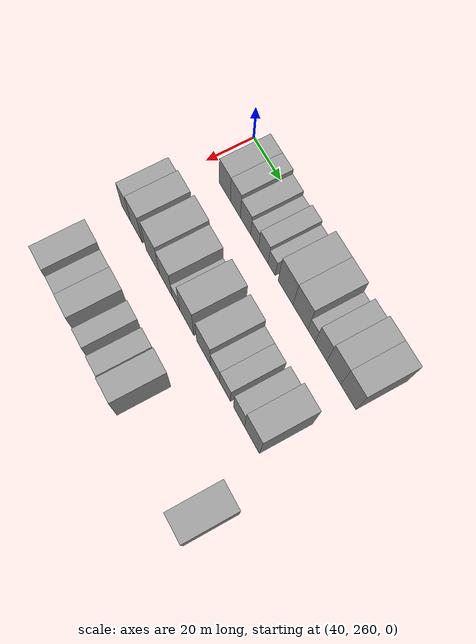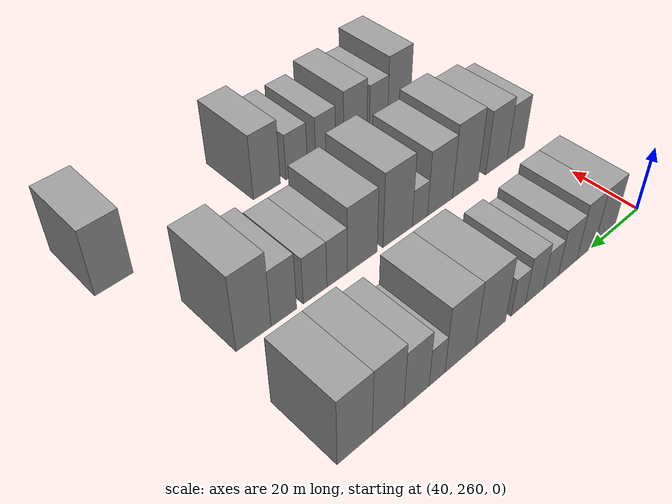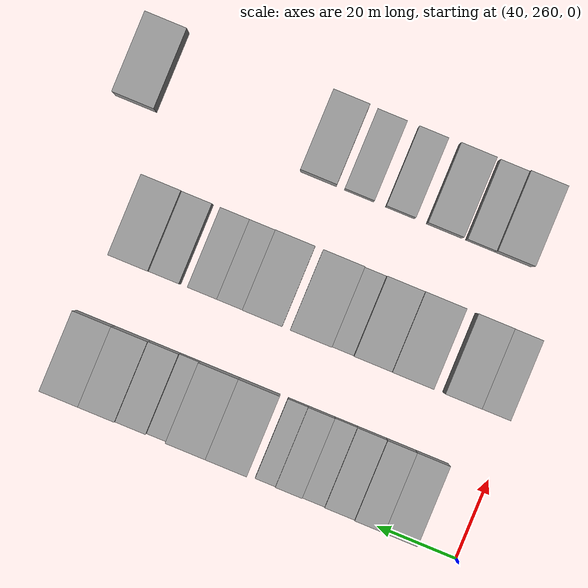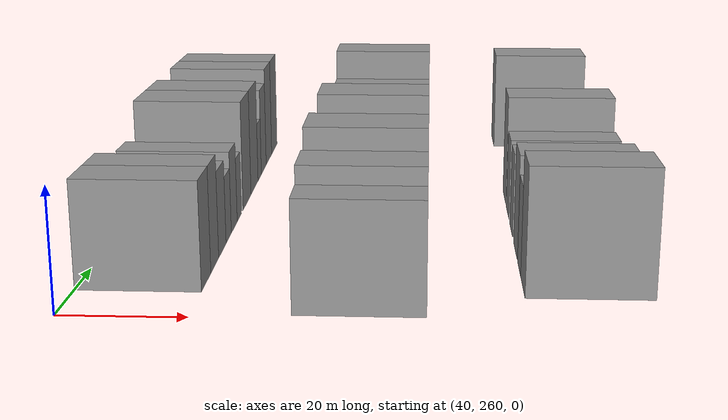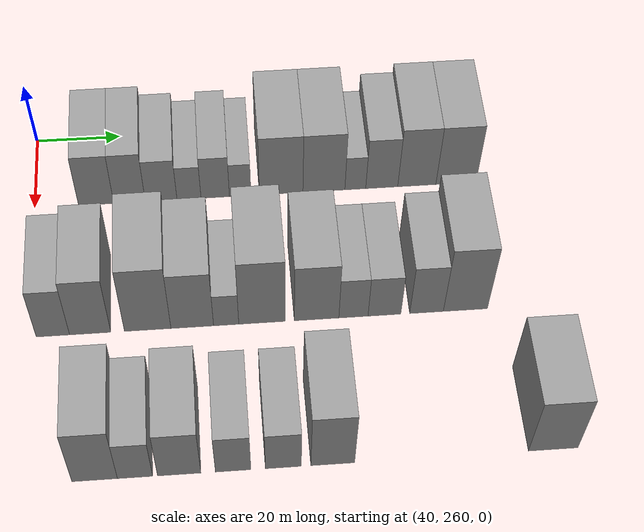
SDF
<sdf version="1.6">
 <world name="default">
  <model name="building_69">
   <static>1</static>
   <pose>50.0000 274.3774 0 0.000000 0.000000 0.000000</pose>
   <link name="link">
    <pose>0 0 9.00 0 0 0</pose>
    <collision name="collision"><geometry><box><size>20.0000 8.2523 18.0000</size></box></geometry></collision>
    <visual name="visual">
     <cast_shadows>0</cast_shadows>
     <geometry><box><size>20.0000 8.2523 18.0000</size></box></geometry>
     <material>
      <script>
       <uri>model://grey_wall/materials/scripts</uri>
       <uri>model://grey_wall/materials/textures</uri>
       <name>vrc/grey_wall</name>
      </script>
     </material>
    </visual>
   </link>
  </model>
  <model name="building_70">
   <static>1</static>
   <pose>50.0000 282.2072 0 0.000000 0.000000 0.000000</pose>
   <link name="link">
    <pose>0 0 9.00 0 0 0</pose>
    <collision name="collision"><geometry><box><size>20.0000 7.4074 18.0000</size></box></geometry></collision>
    <visual name="visual">
     <cast_shadows>0</cast_shadows>
     <geometry><box><size>20.0000 7.4074 18.0000</size></box></geometry>
     <material>
      <script>
       <uri>model://grey_wall/materials/scripts</uri>
       <uri>model://grey_wall/materials/textures</uri>
       <name>vrc/grey_wall</name>
      </script>
     </material>
    </visual>
   </link>
  </model>
  <model name="building_71">
   <static>1</static>
   <pose>50.0000 289.6396 0 0.000000 0.000000 0.000000</pose>
   <link name="link">
    <pose>0 0 7.50 0 0 0</pose>
    <collision name="collision"><geometry><box><size>20.0000 7.4573 15.0000</size></box></geometry></collision>
    <visual name="visual">
     <cast_shadows>0</cast_shadows>
     <geometry><box><size>20.0000 7.4573 15.0000</size></box></geometry>
     <material>
      <script>
       <uri>model://grey_wall/materials/scripts</uri>
       <uri>model://grey_wall/materials/textures</uri>
       <name>vrc/grey_wall</name>
      </script>
     </material>
    </visual>
   </link>
  </model>
  <model name="building_72">
   <static>1</static>
   <pose>50.0000 296.2019 0 0.000000 0.000000 0.000000</pose>
   <link name="link">
    <pose>0 0 6.00 0 0 0</pose>
    <collision name="collision"><geometry><box><size>20.0000 5.6674 12.0000</size></box></geometry></collision>
    <visual name="visual">
     <cast_shadows>0</cast_shadows>
     <geometry><box><size>20.0000 5.6674 12.0000</size></box></geometry>
     <material>
      <script>
       <uri>model://grey_wall/materials/scripts</uri>
       <uri>model://grey_wall/materials/textures</uri>
       <name>vrc/grey_wall</name>
      </script>
     </material>
    </visual>
   </link>
  </model>
  <model name="building_73">
   <static>1</static>
   <pose>50.0000 302.3867 0 0.000000 0.000000 0.000000</pose>
   <link name="link">
    <pose>0 0 7.50 0 0 0</pose>
    <collision name="collision"><geometry><box><size>20.0000 6.7023 15.0000</size></box></geometry></collision>
    <visual name="visual">
     <cast_shadows>0</cast_shadows>
     <geometry><box><size>20.0000 6.7023 15.0000</size></box></geometry>
     <material>
      <script>
       <uri>model://grey_wall/materials/scripts</uri>
       <uri>model://grey_wall/materials/textures</uri>
       <name>vrc/grey_wall</name>
      </script>
     </material>
    </visual>
   </link>
  </model>
  <model name="building_74">
   <static>1</static>
   <pose>50.0000 308.2793 0 0.000000 0.000000 0.000000</pose>
   <link name="link">
    <pose>0 0 6.00 0 0 0</pose>
    <collision name="collision"><geometry><box><size>20.0000 5.0828 12.0000</size></box></geometry></collision>
    <visual name="visual">
     <cast_shadows>0</cast_shadows>
     <geometry><box><size>20.0000 5.0828 12.0000</size></box></geometry>
     <material>
      <script>
       <uri>model://grey_wall/materials/scripts</uri>
       <uri>model://grey_wall/materials/textures</uri>
       <name>vrc/grey_wall</name>
      </script>
     </material>
    </visual>
   </link>
  </model>
  <model name="building_75">
   <static>1</static>
   <pose>50.0000 317.9730 0 0.000000 0.000000 0.000000</pose>
   <link name="link">
    <pose>0 0 10.50 0 0 0</pose>
    <collision name="collision"><geometry><box><size>20.0000 10.3047 21.0000</size></box></geometry></collision>
    <visual name="visual">
     <cast_shadows>0</cast_shadows>
     <geometry><box><size>20.0000 10.3047 21.0000</size></box></geometry>
     <material>
      <script>
       <uri>model://grey_wall/materials/scripts</uri>
       <uri>model://grey_wall/materials/textures</uri>
       <name>vrc/grey_wall</name>
      </script>
     </material>
    </visual>
   </link>
  </model>
  <model name="building_76">
   <static>1</static>
   <pose>50.0000 328.1072 0 0.000000 0.000000 0.000000</pose>
   <link name="link">
    <pose>0 0 10.50 0 0 0</pose>
    <collision name="collision"><geometry><box><size>20.0000 9.9636 21.0000</size></box></geometry></collision>
    <visual name="visual">
     <cast_shadows>0</cast_shadows>
     <geometry><box><size>20.0000 9.9636 21.0000</size></box></geometry>
     <material>
      <script>
       <uri>model://grey_wall/materials/scripts</uri>
       <uri>model://grey_wall/materials/textures</uri>
       <name>vrc/grey_wall</name>
      </script>
     </material>
    </visual>
   </link>
  </model>
  <model name="building_77">
   <static>1</static>
   <pose>50.0000 335.5725 0 0.000000 0.000000 0.000000</pose>
   <link name="link">
    <pose>0 0 6.00 0 0 0</pose>
    <collision name="collision"><geometry><box><size>20.0000 4.9671 12.0000</size></box></geometry></collision>
    <visual name="visual">
     <cast_shadows>0</cast_shadows>
     <geometry><box><size>20.0000 4.9671 12.0000</size></box></geometry>
     <material>
      <script>
       <uri>model://grey_wall/materials/scripts</uri>
       <uri>model://grey_wall/materials/textures</uri>
       <name>vrc/grey_wall</name>
      </script>
     </material>
    </visual>
   </link>
  </model>
  <model name="building_78">
   <static>1</static>
   <pose>50.0000 341.8691 0 0.000000 0.000000 0.000000</pose>
   <link name="link">
    <pose>0 0 9.00 0 0 0</pose>
    <collision name="collision"><geometry><box><size>20.0000 7.6261 18.0000</size></box></geometry></collision>
    <visual name="visual">
     <cast_shadows>0</cast_shadows>
     <geometry><box><size>20.0000 7.6261 18.0000</size></box></geometry>
     <material>
      <script>
       <uri>model://grey_wall/materials/scripts</uri>
       <uri>model://grey_wall/materials/textures</uri>
       <name>vrc/grey_wall</name>
      </script>
     </material>
    </visual>
   </link>
  </model>
  <model name="building_79">
   <static>1</static>
   <pose>50.0000 350.2382 0 0.000000 0.000000 0.000000</pose>
   <link name="link">
    <pose>0 0 10.50 0 0 0</pose>
    <collision name="collision"><geometry><box><size>20.0000 9.1122 21.0000</size></box></geometry></collision>
    <visual name="visual">
     <cast_shadows>0</cast_shadows>
     <geometry><box><size>20.0000 9.1122 21.0000</size></box></geometry>
     <material>
      <script>
       <uri>model://grey_wall/materials/scripts</uri>
       <uri>model://grey_wall/materials/textures</uri>
       <name>vrc/grey_wall</name>
      </script>
     </material>
    </visual>
   </link>
  </model>
  <model name="building_80">
   <static>1</static>
   <pose>50.0000 359.6091 0 0.000000 0.000000 0.000000</pose>
   <link name="link">
    <pose>0 0 10.50 0 0 0</pose>
    <collision name="collision"><geometry><box><size>20.0000 9.6297 21.0000</size></box></geometry></collision>
    <visual name="visual">
     <cast_shadows>0</cast_shadows>
     <geometry><box><size>20.0000 9.6297 21.0000</size></box></geometry>
     <material>
      <script>
       <uri>model://grey_wall/materials/scripts</uri>
       <uri>model://grey_wall/materials/textures</uri>
       <name>vrc/grey_wall</name>
      </script>
     </material>
    </visual>
   </link>
  </model>
  <model name="building_152">
   <static>1</static>
   <pose>85.0000 265.1266 0 0.000000 0.000000 0.000000</pose>
   <link name="link">
    <pose>0 0 9.00 0 0 0</pose>
    <collision name="collision"><geometry><box><size>20.0000 7.3191 18.0000</size></box></geometry></collision>
    <visual name="visual">
     <cast_shadows>0</cast_shadows>
     <geometry><box><size>20.0000 7.3191 18.0000</size></box></geometry>
     <material>
      <script>
       <uri>model://grey_wall/materials/scripts</uri>
       <uri>model://grey_wall/materials/textures</uri>
       <name>vrc/grey_wall</name>
      </script>
     </material>
    </visual>
   </link>
  </model>
  <model name="building_153">
   <static>1</static>
   <pose>85.0000 273.3139 0 0.000000 0.000000 0.000000</pose>
   <link name="link">
    <pose>0 0 10.50 0 0 0</pose>
    <collision name="collision"><geometry><box><size>20.0000 9.0555 21.0000</size></box></geometry></collision>
    <visual name="visual">
     <cast_shadows>0</cast_shadows>
     <geometry><box><size>20.0000 9.0555 21.0000</size></box></geometry>
     <material>
      <script>
       <uri>model://grey_wall/materials/scripts</uri>
       <uri>model://grey_wall/materials/textures</uri>
       <name>vrc/grey_wall</name>
      </script>
     </material>
    </visual>
   </link>
  </model>
  <model name="building_154">
   <static>1</static>
   <pose>85.0000 285.9685 0 0.000000 0.000000 0.000000</pose>
   <link name="link">
    <pose>0 0 12.00 0 0 0</pose>
    <collision name="collision"><geometry><box><size>20.0000 10.2536 24.0000</size></box></geometry></collision>
    <visual name="visual">
     <cast_shadows>0</cast_shadows>
     <geometry><box><size>20.0000 10.2536 24.0000</size></box></geometry>
     <material>
      <script>
       <uri>model://grey_wall/materials/scripts</uri>
       <uri>model://grey_wall/materials/textures</uri>
       <name>vrc/grey_wall</name>
      </script>
     </material>
    </visual>
   </link>
  </model>
  <model name="building_155">
   <static>1</static>
   <pose>85.0000 295.8116 0 0.000000 0.000000 0.000000</pose>
   <link name="link">
    <pose>0 0 10.50 0 0 0</pose>
    <collision name="collision"><geometry><box><size>20.0000 9.4326 21.0000</size></box></geometry></collision>
    <visual name="visual">
     <cast_shadows>0</cast_shadows>
     <geometry><box><size>20.0000 9.4326 21.0000</size></box></geometry>
     <material>
      <script>
       <uri>model://grey_wall/materials/scripts</uri>
       <uri>model://grey_wall/materials/textures</uri>
       <name>vrc/grey_wall</name>
      </script>
     </material>
    </visual>
   </link>
  </model>
  <model name="building_156">
   <static>1</static>
   <pose>85.0000 303.3162 0 0.000000 0.000000 0.000000</pose>
   <link name="link">
    <pose>0 0 6.00 0 0 0</pose>
    <collision name="collision"><geometry><box><size>20.0000 5.5767 12.0000</size></box></geometry></collision>
    <visual name="visual">
     <cast_shadows>0</cast_shadows>
     <geometry><box><size>20.0000 5.5767 12.0000</size></box></geometry>
     <material>
      <script>
       <uri>model://grey_wall/materials/scripts</uri>
       <uri>model://grey_wall/materials/textures</uri>
       <name>vrc/grey_wall</name>
      </script>
     </material>
    </visual>
   </link>
  </model>
  <model name="building_157">
   <static>1</static>
   <pose>85.0000 311.2754 0 0.000000 0.000000 0.000000</pose>
   <link name="link">
    <pose>0 0 12.00 0 0 0</pose>
    <collision name="collision"><geometry><box><size>20.0000 10.3415 24.0000</size></box></geometry></collision>
    <visual name="visual">
     <cast_shadows>0</cast_shadows>
     <geometry><box><size>20.0000 10.3415 24.0000</size></box></geometry>
     <material>
      <script>
       <uri>model://grey_wall/materials/scripts</uri>
       <uri>model://grey_wall/materials/textures</uri>
       <name>vrc/grey_wall</name>
      </script>
     </material>
    </visual>
   </link>
  </model>
  <model name="building_158">
   <static>1</static>
   <pose>85.0000 323.4050 0 0.000000 0.000000 0.000000</pose>
   <link name="link">
    <pose>0 0 10.50 0 0 0</pose>
    <collision name="collision"><geometry><box><size>20.0000 9.9177 21.0000</size></box></geometry></collision>
    <visual name="visual">
     <cast_shadows>0</cast_shadows>
     <geometry><box><size>20.0000 9.9177 21.0000</size></box></geometry>
     <material>
      <script>
       <uri>model://grey_wall/materials/scripts</uri>
       <uri>model://grey_wall/materials/textures</uri>
       <name>vrc/grey_wall</name>
      </script>
     </material>
    </visual>
   </link>
  </model>
  <model name="building_159">
   <static>1</static>
   <pose>85.0000 331.6157 0 0.000000 0.000000 0.000000</pose>
   <link name="link">
    <pose>0 0 7.50 0 0 0</pose>
    <collision name="collision"><geometry><box><size>20.0000 6.5037 15.0000</size></box></geometry></collision>
    <visual name="visual">
     <cast_shadows>0</cast_shadows>
     <geometry><box><size>20.0000 6.5037 15.0000</size></box></geometry>
     <material>
      <script>
       <uri>model://grey_wall/materials/scripts</uri>
       <uri>model://grey_wall/materials/textures</uri>
       <name>vrc/grey_wall</name>
      </script>
     </material>
    </visual>
   </link>
  </model>
  <model name="building_160">
   <static>1</static>
   <pose>85.0000 338.5389 0 0.000000 0.000000 0.000000</pose>
   <link name="link">
    <pose>0 0 7.50 0 0 0</pose>
    <collision name="collision"><geometry><box><size>20.0000 7.3428 15.0000</size></box></geometry></collision>
    <visual name="visual">
     <cast_shadows>0</cast_shadows>
     <geometry><box><size>20.0000 7.3428 15.0000</size></box></geometry>
     <material>
      <script>
       <uri>model://grey_wall/materials/scripts</uri>
       <uri>model://grey_wall/materials/textures</uri>
       <name>vrc/grey_wall</name>
      </script>
     </material>
    </visual>
   </link>
  </model>
  <model name="building_161">
   <static>1</static>
   <pose>85.0000 347.9754 0 0.000000 0.000000 0.000000</pose>
   <link name="link">
    <pose>0 0 9.00 0 0 0</pose>
    <collision name="collision"><geometry><box><size>20.0000 7.5301 18.0000</size></box></geometry></collision>
    <visual name="visual">
     <cast_shadows>0</cast_shadows>
     <geometry><box><size>20.0000 7.5301 18.0000</size></box></geometry>
     <material>
      <script>
       <uri>model://grey_wall/materials/scripts</uri>
       <uri>model://grey_wall/materials/textures</uri>
       <name>vrc/grey_wall</name>
      </script>
     </material>
    </visual>
   </link>
  </model>
  <model name="building_162">
   <static>1</static>
   <pose>85.0000 356.6947 0 0.000000 0.000000 0.000000</pose>
   <link name="link">
    <pose>0 0 12.00 0 0 0</pose>
    <collision name="collision"><geometry><box><size>20.0000 9.9086 24.0000</size></box></geometry></collision>
    <visual name="visual">
     <cast_shadows>0</cast_shadows>
     <geometry><box><size>20.0000 9.9086 24.0000</size></box></geometry>
     <material>
      <script>
       <uri>model://grey_wall/materials/scripts</uri>
       <uri>model://grey_wall/materials/textures</uri>
       <name>vrc/grey_wall</name>
      </script>
     </material>
    </visual>
   </link>
  </model>
  <model name="building_229">
   <static>1</static>
   <pose>120.0000 274.5600 0 0.000000 0.000000 0.000000</pose>
   <link name="link">
    <pose>0 0 10.50 0 0 0</pose>
    <collision name="collision"><geometry><box><size>20.0000 9.3492 21.0000</size></box></geometry></collision>
    <visual name="visual">
     <cast_shadows>0</cast_shadows>
     <geometry><box><size>20.0000 9.3492 21.0000</size></box></geometry>
     <material>
      <script>
       <uri>model://grey_wall/materials/scripts</uri>
       <uri>model://grey_wall/materials/textures</uri>
       <name>vrc/grey_wall</name>
      </script>
     </material>
    </visual>
   </link>
  </model>
  <model name="building_230">
   <static>1</static>
   <pose>120.0000 282.8592 0 0.000000 0.000000 0.000000</pose>
   <link name="link">
    <pose>0 0 7.50 0 0 0</pose>
    <collision name="collision"><geometry><box><size>20.0000 7.2491 15.0000</size></box></geometry></collision>
    <visual name="visual">
     <cast_shadows>0</cast_shadows>
     <geometry><box><size>20.0000 7.2491 15.0000</size></box></geometry>
     <material>
      <script>
       <uri>model://grey_wall/materials/scripts</uri>
       <uri>model://grey_wall/materials/textures</uri>
       <name>vrc/grey_wall</name>
      </script>
     </material>
    </visual>
   </link>
  </model>
  <model name="building_231">
   <static>1</static>
   <pose>120.0000 291.9627 0 0.000000 0.000000 0.000000</pose>
   <link name="link">
    <pose>0 0 9.00 0 0 0</pose>
    <collision name="collision"><geometry><box><size>20.0000 8.9580 18.0000</size></box></geometry></collision>
    <visual name="visual">
     <cast_shadows>0</cast_shadows>
     <geometry><box><size>20.0000 8.9580 18.0000</size></box></geometry>
     <material>
      <script>
       <uri>model://grey_wall/materials/scripts</uri>
       <uri>model://grey_wall/materials/textures</uri>
       <name>vrc/grey_wall</name>
      </script>
     </material>
    </visual>
   </link>
  </model>
  <model name="building_232">
   <static>1</static>
   <pose>120.0000 303.1150 0 0.000000 0.000000 0.000000</pose>
   <link name="link">
    <pose>0 0 7.50 0 0 0</pose>
    <collision name="collision"><geometry><box><size>20.0000 7.3466 15.0000</size></box></geometry></collision>
    <visual name="visual">
     <cast_shadows>0</cast_shadows>
     <geometry><box><size>20.0000 7.3466 15.0000</size></box></geometry>
     <material>
      <script>
       <uri>model://grey_wall/materials/scripts</uri>
       <uri>model://grey_wall/materials/textures</uri>
       <name>vrc/grey_wall</name>
      </script>
     </material>
    </visual>
   </link>
  </model>
  <model name="building_233">
   <static>1</static>
   <pose>120.0000 313.5134 0 0.000000 0.000000 0.000000</pose>
   <link name="link">
    <pose>0 0 7.50 0 0 0</pose>
    <collision name="collision"><geometry><box><size>20.0000 7.4503 15.0000</size></box></geometry></collision>
    <visual name="visual">
     <cast_shadows>0</cast_shadows>
     <geometry><box><size>20.0000 7.4503 15.0000</size></box></geometry>
     <material>
      <script>
       <uri>model://grey_wall/materials/scripts</uri>
       <uri>model://grey_wall/materials/textures</uri>
       <name>vrc/grey_wall</name>
      </script>
     </material>
    </visual>
   </link>
  </model>
  <model name="building_234">
   <static>1</static>
   <pose>120.0000 323.7942 0 0.000000 0.000000 0.000000</pose>
   <link name="link">
    <pose>0 0 10.50 0 0 0</pose>
    <collision name="collision"><geometry><box><size>20.0000 9.1112 21.0000</size></box></geometry></collision>
    <visual name="visual">
     <cast_shadows>0</cast_shadows>
     <geometry><box><size>20.0000 9.1112 21.0000</size></box></geometry>
     <material>
      <script>
       <uri>model://grey_wall/materials/scripts</uri>
       <uri>model://grey_wall/materials/textures</uri>
       <name>vrc/grey_wall</name>
      </script>
     </material>
    </visual>
   </link>
  </model>
  <model name="building_235">
   <static>1</static>
   <pose>120.0000 370.0405 0 0.000000 0.000000 0.000000</pose>
   <link name="link">
    <pose>0 0 10.50 0 0 0</pose>
    <collision name="collision"><geometry><box><size>20.0000 10.4605 21.0000</size></box></geometry></collision>
    <visual name="visual">
     <cast_shadows>0</cast_shadows>
     <geometry><box><size>20.0000 10.4605 21.0000</size></box></geometry>
     <material>
      <script>
       <uri>model://grey_wall/materials/scripts</uri>
       <uri>model://grey_wall/materials/textures</uri>
       <name>vrc/grey_wall</name>
      </script>
     </material>
    </visual>
   </link>
  </model>
 </world>
</sdf>
